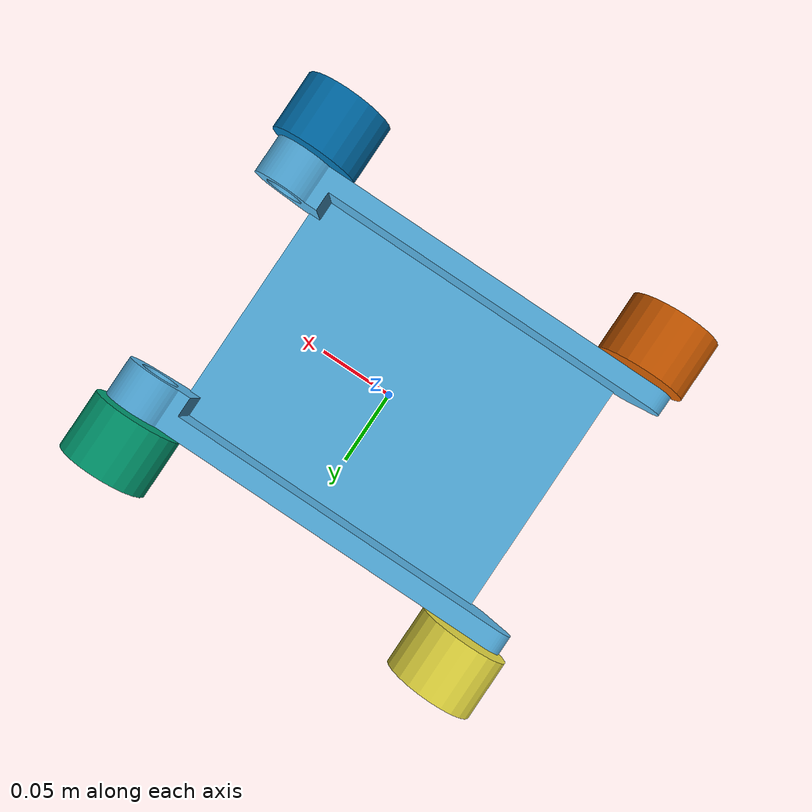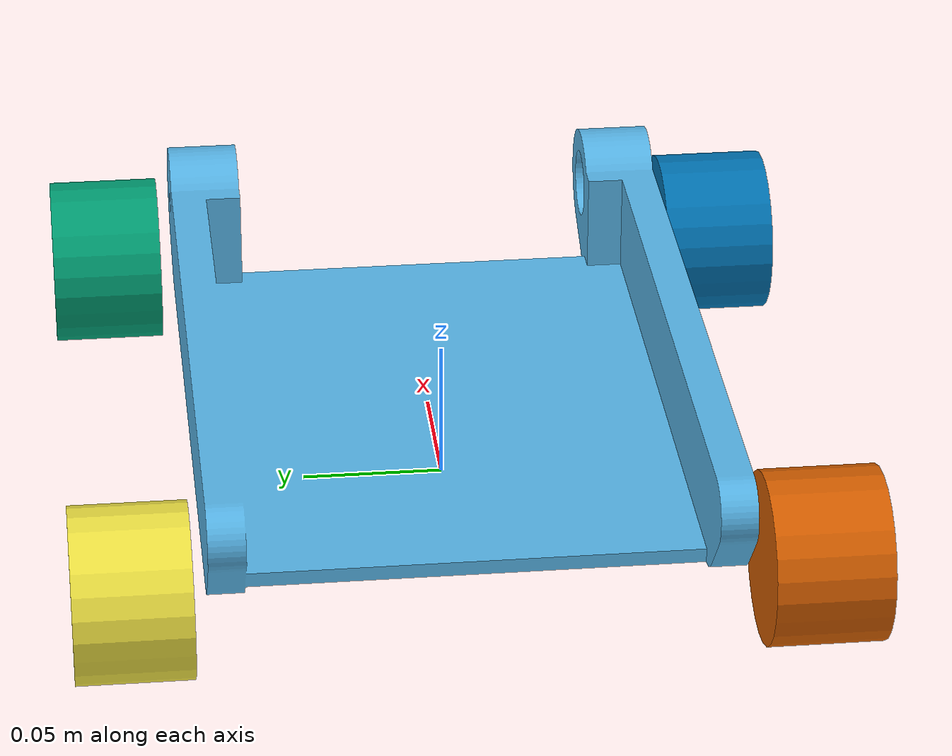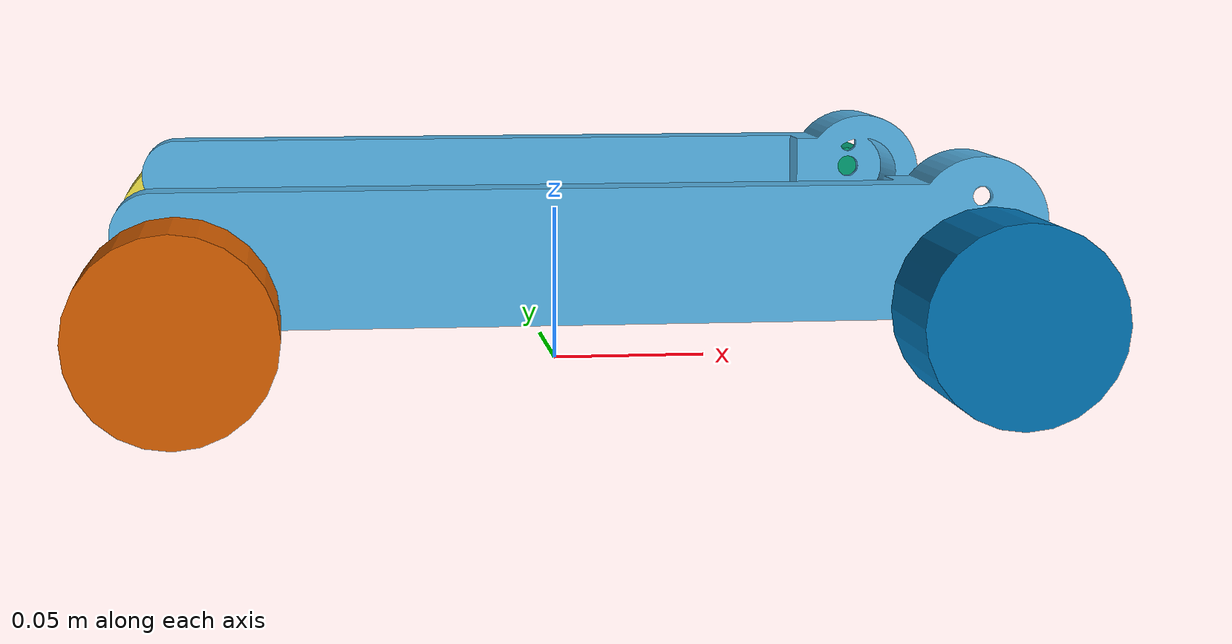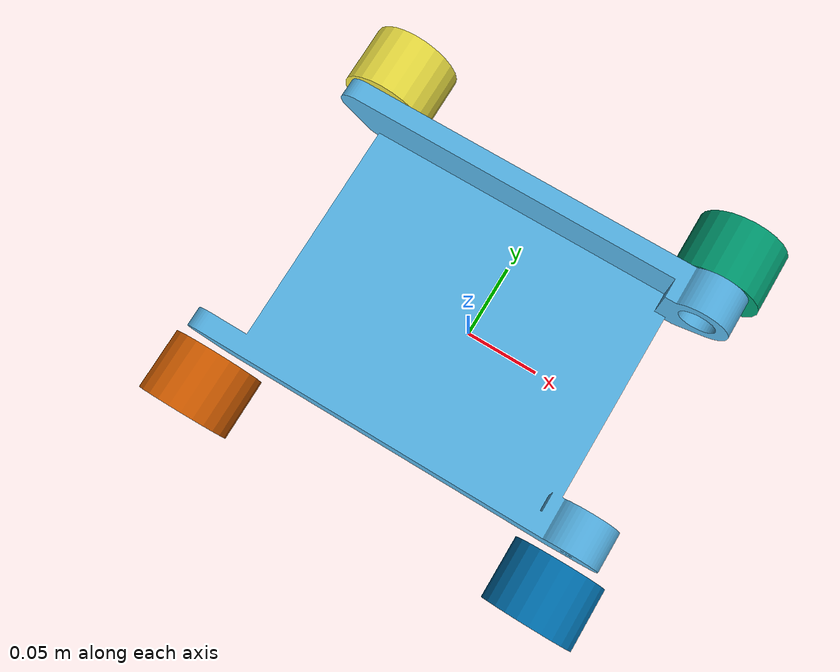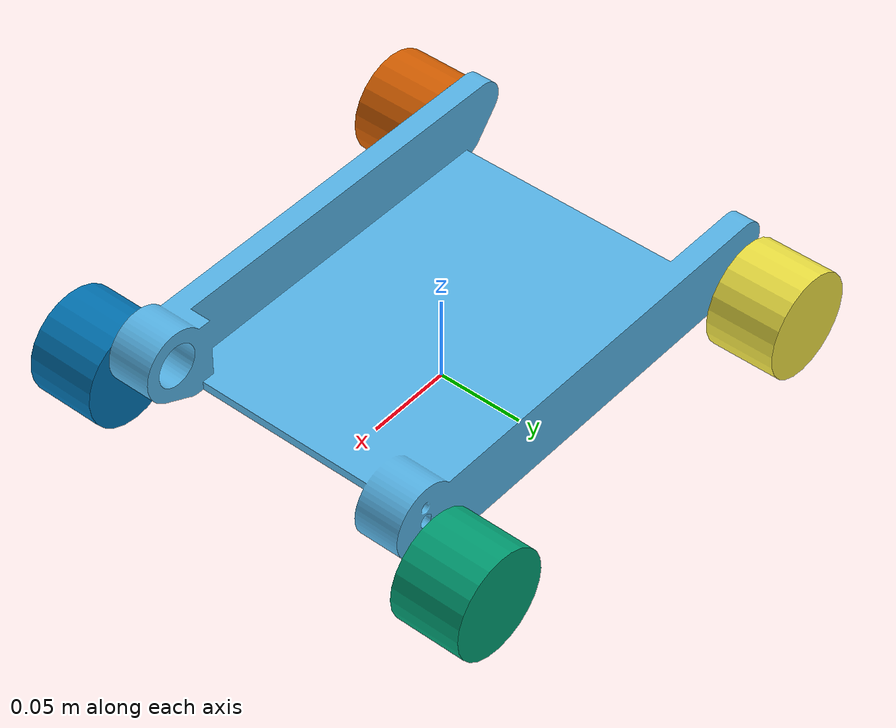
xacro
<?xml version="1.0"?>
<robot name="tracked_robot" xmlns:xacro="http://www.ros.org/wiki/xacro">

  <!-- ===== Chassis-mål (meter / kg) ===== -->
  <xacro:property name="chassis_length" value="0.2794"/>
  <xacro:property name="chassis_width"  value="0.1819"/>
  <xacro:property name="chassis_height" value="0.0487"/>
  <xacro:property name="chassis_mass"   value="1.5"/>
  <!-- høyde fra bakken til senteret av chassiset -->
  <xacro:property name="chassis_z"      value="0.05"/>

  <!-- ===== Hjul-mål ===== -->
  <xacro:property name="wheel_radius" value="0.03"/>
  <xacro:property name="wheel_width"  value="0.04"/>
  <xacro:property name="wheel_mass"   value="0.1"/>
  <xacro:property name="wheel_x"      value="0.12"/>
  <xacro:property name="wheel_y"      value="0.116"/>
  <!-- hjulsenteret står wheel_radius over bakken; base_link står chassis_z over bakken -->
  <xacro:property name="wheel_z"      value="${wheel_radius - chassis_z}"/>

  <!-- ===== Punkt på bakken under roboten ===== -->
  <link name="base_footprint"/>

  <!-- ===== Chassis ===== -->
  <link name="base_link">

    <!-- det du SER: Fusion-meshen (mm -> m), flyttet så den ligger midt i boksen -->
    <visual>
      <origin xyz="-0.0040 -0.0909 0.0163" rpy="0 0 0"/>
      <geometry>
        <mesh filename="package://tracked_robot_description/meshes/chassis.stl" scale="0.001 0.001 0.001"/>
      </geometry>
    </visual>

    <!-- det fysikken KOLLIDERER med: enkel boks -->
    <collision>
      <origin xyz="0 0 0" rpy="0 0 0"/>
      <geometry>
        <box size="${chassis_length} ${chassis_width} ${chassis_height}"/>
      </geometry>
    </collision>

    <!-- vekt og treghet for en boks -->
    <inertial>
      <origin xyz="0 0 0" rpy="0 0 0"/>
      <mass value="${chassis_mass}"/>
      <inertia
        ixx="${chassis_mass/12 * (chassis_width**2  + chassis_height**2)}"
        iyy="${chassis_mass/12 * (chassis_length**2 + chassis_height**2)}"
        izz="${chassis_mass/12 * (chassis_length**2 + chassis_width**2)}"
        ixy="0" ixz="0" iyz="0"/>
    </inertial>

  </link>

  <!-- ===== Fester chassiset til bakkepunktet ===== -->
  <joint name="base_joint" type="fixed">
    <parent link="base_footprint"/>
    <child link="base_link"/>
    <origin xyz="0 0 ${chassis_z}" rpy="0 0 0"/>
  </joint>

  <!-- ===== Makro: ett hjul + jointen + friksjon ===== -->
  <xacro:macro name="wheel" params="name x y">

    <link name="${name}_wheel">
      <visual>
        <geometry>
          <cylinder radius="${wheel_radius}" length="${wheel_width}"/>
        </geometry>
      </visual>
      <collision>
        <geometry>
          <cylinder radius="${wheel_radius}" length="${wheel_width}"/>
        </geometry>
      </collision>
      <inertial>
        <mass value="${wheel_mass}"/>
        <inertia
          ixx="${wheel_mass/12 * (3*wheel_radius**2 + wheel_width**2)}"
          iyy="${wheel_mass/12 * (3*wheel_radius**2 + wheel_width**2)}"
          izz="${wheel_mass/2 * wheel_radius**2}"
          ixy="0" ixz="0" iyz="0"/>
      </inertial>
    </link>

    <!-- continuous = kan rotere fritt; -pi/2 rundt X legger sylinderen på siden -->
    <joint name="${name}_wheel_joint" type="continuous">
      <parent link="base_link"/>
      <child link="${name}_wheel"/>
      <origin xyz="${x} ${y} ${wheel_z}" rpy="${-pi/2} 0 0"/>
      <axis xyz="0 0 1"/>
    </joint>

    <!-- friksjon: fdir1 langs akselen (sidelengs). Lav mu1 = sklir lett sidelengs når den snur -->
    <gazebo reference="${name}_wheel">
      <mu1>0.3</mu1>
      <mu2>1.0</mu2>
      <fdir1>0 0 1</fdir1>
    </gazebo>

  </xacro:macro>

  <!-- ===== Fire hjul ===== -->
  <xacro:wheel name="front_left"  x="${wheel_x}"  y="${wheel_y}"/>
  <xacro:wheel name="rear_left"   x="${-wheel_x}" y="${wheel_y}"/>
  <xacro:wheel name="front_right" x="${wheel_x}"  y="${-wheel_y}"/>
  <xacro:wheel name="rear_right"  x="${-wheel_x}" y="${-wheel_y}"/>

  <!-- ===== Kjøring: DiffDrive styrer venstre og høyre side, lytter på cmd_vel ===== -->
  <gazebo>
    <plugin filename="gz-sim-diff-drive-system" name="gz::sim::systems::DiffDrive">
      <left_joint>front_left_wheel_joint</left_joint>
      <left_joint>rear_left_wheel_joint</left_joint>
      <right_joint>front_right_wheel_joint</right_joint>
      <right_joint>rear_right_wheel_joint</right_joint>
      <!-- "effektiv" sporvidde; større tall = raskere sving per kommando -->
      <wheel_separation>${3*wheel_y}</wheel_separation>
      <wheel_radius>${wheel_radius}</wheel_radius>
      <topic>cmd_vel</topic>
      <odom_topic>odom</odom_topic>
      <frame_id>odom</frame_id>
      <child_frame_id>base_footprint</child_frame_id>
    </plugin>
  </gazebo>

</robot>
